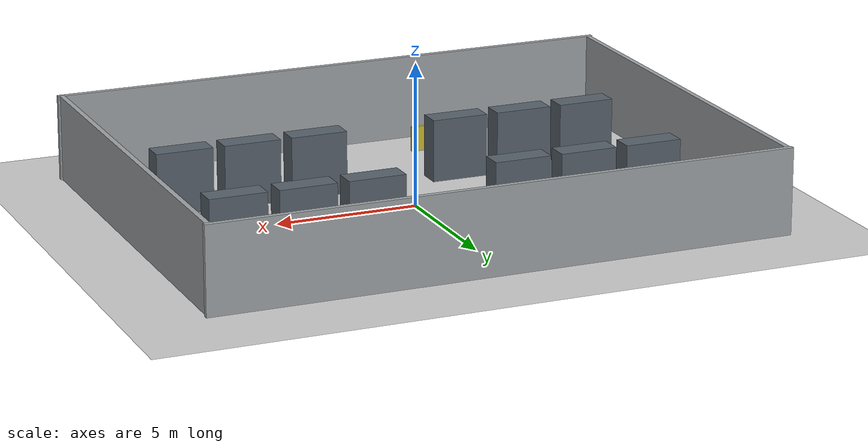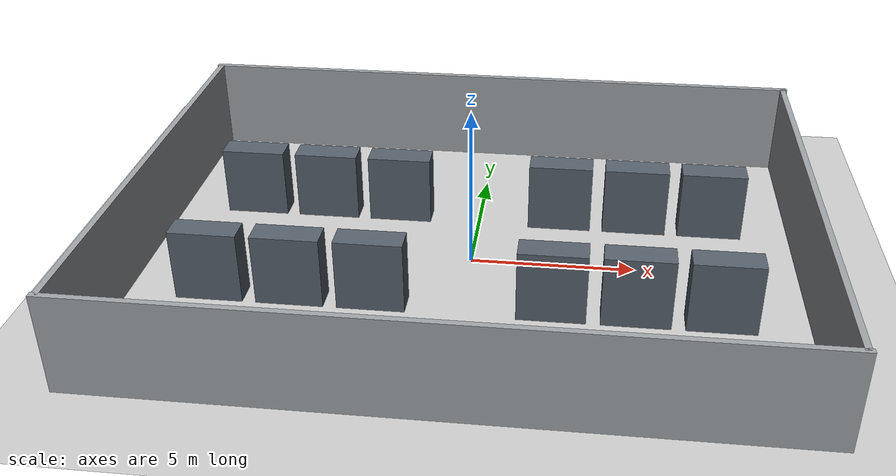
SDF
<sdf version="1.8">
 <world name="industrial_dynamic">
  <model name="ground_plane">
   <static>true</static>
   <link name="link">
    <collision name="collision">
     <geometry><plane><normal>0 0 1</normal><size>100 100</size></plane></geometry>
     <surface><friction><ode><mu>1.2</mu><mu2>1.2</mu2></ode></friction></surface>
    </collision>
    <visual name="visual">
     <geometry><plane><normal>0 0 1</normal><size>100 100</size></plane></geometry>
     <material>
      <ambient>0.8 0.8 0.8 1</ambient>
      <diffuse>0.8 0.8 0.8 1</diffuse>
      <specular>0.8 0.8 0.8 1</specular>
     </material>
    </visual>
   </link>
  </model>
  <plugin filename="ignition-gazebo-physics-system" name="ignition::gazebo::systems::Physics"/>
  <plugin filename="ignition-gazebo-sensors-system" name="ignition::gazebo::systems::Sensors">
   <render_engine>ogre2</render_engine>
  </plugin>
  <plugin filename="ignition-gazebo-imu-system" name="ignition::gazebo::systems::Imu"/>
  <plugin filename="ignition-gazebo-contact-system" name="ignition::gazebo::systems::Contact"/>
  <plugin filename="ignition-gazebo-user-commands-system" name="ignition::gazebo::systems::UserCommands"/>
  <plugin filename="ignition-gazebo-scene-broadcaster-system" name="ignition::gazebo::systems::SceneBroadcaster"/>
  <physics name="default" default="0" type="ode">
   <max_step_size>0.001</max_step_size>
   <real_time_factor>1</real_time_factor>
   <real_time_update_rate>1000</real_time_update_rate>
  </physics>
  <scene>
   <ambient>0.42 0.43 0.45 1</ambient>
   <background>0.70 0.74 0.78 1</background>
   <shadows>true</shadows>
  </scene>
  <light name="sun" type="directional">
   <pose>0 0 10 0 0 0</pose>
   <diffuse>0.85 0.84 0.78 1</diffuse>
   <specular>0.15 0.15 0.12 1</specular>
   <direction>-0.45 0.20 -0.87</direction>
  </light>
  <light name="overhead_west_aisle" type="point">
   <pose>-4.5 0 5.2 0 0 0</pose>
   <diffuse>0.88 0.90 0.96 1</diffuse>
   <specular>0.08 0.08 0.08 1</specular>
   <attenuation>
    <range>18</range>
    <constant>0.55</constant>
    <linear>0.025</linear>
    <quadratic>0.001</quadratic>
   </attenuation>
   <cast_shadows>false</cast_shadows>
  </light>
  <light name="overhead_east_aisle" type="point">
   <pose>4.5 0 5.2 0 0 0</pose>
   <diffuse>0.88 0.90 0.96 1</diffuse>
   <specular>0.08 0.08 0.08 1</specular>
   <attenuation>
    <range>18</range>
    <constant>0.55</constant>
    <linear>0.025</linear>
    <quadratic>0.001</quadratic>
   </attenuation>
   <cast_shadows>false</cast_shadows>
  </light>
  <model name="wall_south">
   <static>true</static>
   <pose>0 -7.5 1.5 0 0 0</pose>
   <link name="link">
    <collision name="collision"><geometry><box><size>20.3 0.18 3.0</size></box></geometry></collision>
    <visual name="visual">
     <geometry><box><size>20.3 0.18 3.0</size></box></geometry>
     <material><ambient>0.62 0.64 0.65 1</ambient><diffuse>0.62 0.64 0.65 1</diffuse></material>
    </visual>
   </link>
  </model>
  <model name="wall_north">
   <static>true</static>
   <pose>0 7.5 1.5 0 0 0</pose>
   <link name="link">
    <collision name="collision"><geometry><box><size>20.3 0.18 3.0</size></box></geometry></collision>
    <visual name="visual">
     <geometry><box><size>20.3 0.18 3.0</size></box></geometry>
     <material><ambient>0.62 0.64 0.65 1</ambient><diffuse>0.62 0.64 0.65 1</diffuse></material>
    </visual>
   </link>
  </model>
  <model name="wall_west">
   <static>true</static>
   <pose>-10 0 1.5 0 0 0</pose>
   <link name="link">
    <collision name="collision"><geometry><box><size>0.18 15.0 3.0</size></box></geometry></collision>
    <visual name="visual">
     <geometry><box><size>0.18 15.0 3.0</size></box></geometry>
     <material><ambient>0.62 0.64 0.65 1</ambient><diffuse>0.62 0.64 0.65 1</diffuse></material>
    </visual>
   </link>
  </model>
  <model name="wall_east">
   <static>true</static>
   <pose>10 0 1.5 0 0 0</pose>
   <link name="link">
    <collision name="collision"><geometry><box><size>0.18 15.0 3.0</size></box></geometry></collision>
    <visual name="visual">
     <geometry><box><size>0.18 15.0 3.0</size></box></geometry>
     <material><ambient>0.62 0.64 0.65 1</ambient><diffuse>0.62 0.64 0.65 1</diffuse></material>
    </visual>
   </link>
  </model>
  <model name="shelf_south_west_1">
   <static>true</static>
   <pose>-7.4 -2.6 1.1 0 0 0</pose>
   <link name="link">
    <collision name="collision"><geometry><box><size>2.0 0.8 2.2</size></box></geometry></collision>
    <visual name="visual">
     <geometry><box><size>2.0 0.8 2.2</size></box></geometry>
     <material><ambient>0.32 0.36 0.40 1</ambient><diffuse>0.34 0.38 0.42 1</diffuse></material>
    </visual>
   </link>
  </model>
  <model name="shelf_south_west_2">
   <static>true</static>
   <pose>-5.0 -2.6 1.1 0 0 0</pose>
   <link name="link">
    <collision name="collision"><geometry><box><size>2.0 0.8 2.2</size></box></geometry></collision>
    <visual name="visual">
     <geometry><box><size>2.0 0.8 2.2</size></box></geometry>
     <material><ambient>0.32 0.36 0.40 1</ambient><diffuse>0.34 0.38 0.42 1</diffuse></material>
    </visual>
   </link>
  </model>
  <model name="shelf_south_west_3">
   <static>true</static>
   <pose>-2.6 -2.6 1.1 0 0 0</pose>
   <link name="link">
    <collision name="collision"><geometry><box><size>2.0 0.8 2.2</size></box></geometry></collision>
    <visual name="visual">
     <geometry><box><size>2.0 0.8 2.2</size></box></geometry>
     <material><ambient>0.32 0.36 0.40 1</ambient><diffuse>0.34 0.38 0.42 1</diffuse></material>
    </visual>
   </link>
  </model>
  <model name="shelf_south_east_1">
   <static>true</static>
   <pose>2.6 -2.6 1.1 0 0 0</pose>
   <link name="link">
    <collision name="collision"><geometry><box><size>2.0 0.8 2.2</size></box></geometry></collision>
    <visual name="visual">
     <geometry><box><size>2.0 0.8 2.2</size></box></geometry>
     <material><ambient>0.32 0.36 0.40 1</ambient><diffuse>0.34 0.38 0.42 1</diffuse></material>
    </visual>
   </link>
  </model>
  <model name="shelf_south_east_2">
   <static>true</static>
   <pose>5.0 -2.6 1.1 0 0 0</pose>
   <link name="link">
    <collision name="collision"><geometry><box><size>2.0 0.8 2.2</size></box></geometry></collision>
    <visual name="visual">
     <geometry><box><size>2.0 0.8 2.2</size></box></geometry>
     <material><ambient>0.32 0.36 0.40 1</ambient><diffuse>0.34 0.38 0.42 1</diffuse></material>
    </visual>
   </link>
  </model>
  <model name="shelf_south_east_3">
   <static>true</static>
   <pose>7.4 -2.6 1.1 0 0 0</pose>
   <link name="link">
    <collision name="collision"><geometry><box><size>2.0 0.8 2.2</size></box></geometry></collision>
    <visual name="visual">
     <geometry><box><size>2.0 0.8 2.2</size></box></geometry>
     <material><ambient>0.32 0.36 0.40 1</ambient><diffuse>0.34 0.38 0.42 1</diffuse></material>
    </visual>
   </link>
  </model>
  <model name="shelf_north_west_1">
   <static>true</static>
   <pose>-7.4 2.6 1.1 0 0 0</pose>
   <link name="link">
    <collision name="collision"><geometry><box><size>2.0 0.8 2.2</size></box></geometry></collision>
    <visual name="visual">
     <geometry><box><size>2.0 0.8 2.2</size></box></geometry>
     <material><ambient>0.32 0.36 0.40 1</ambient><diffuse>0.34 0.38 0.42 1</diffuse></material>
    </visual>
   </link>
  </model>
  <model name="shelf_north_west_2">
   <static>true</static>
   <pose>-5.0 2.6 1.1 0 0 0</pose>
   <link name="link">
    <collision name="collision"><geometry><box><size>2.0 0.8 2.2</size></box></geometry></collision>
    <visual name="visual">
     <geometry><box><size>2.0 0.8 2.2</size></box></geometry>
     <material><ambient>0.32 0.36 0.40 1</ambient><diffuse>0.34 0.38 0.42 1</diffuse></material>
    </visual>
   </link>
  </model>
  <model name="shelf_north_west_3">
   <static>true</static>
   <pose>-2.6 2.6 1.1 0 0 0</pose>
   <link name="link">
    <collision name="collision"><geometry><box><size>2.0 0.8 2.2</size></box></geometry></collision>
    <visual name="visual">
     <geometry><box><size>2.0 0.8 2.2</size></box></geometry>
     <material><ambient>0.32 0.36 0.40 1</ambient><diffuse>0.34 0.38 0.42 1</diffuse></material>
    </visual>
   </link>
  </model>
  <model name="shelf_north_east_1">
   <static>true</static>
   <pose>2.6 2.6 1.1 0 0 0</pose>
   <link name="link">
    <collision name="collision"><geometry><box><size>2.0 0.8 2.2</size></box></geometry></collision>
    <visual name="visual">
     <geometry><box><size>2.0 0.8 2.2</size></box></geometry>
     <material><ambient>0.32 0.36 0.40 1</ambient><diffuse>0.34 0.38 0.42 1</diffuse></material>
    </visual>
   </link>
  </model>
  <model name="shelf_north_east_2">
   <static>true</static>
   <pose>5.0 2.6 1.1 0 0 0</pose>
   <link name="link">
    <collision name="collision"><geometry><box><size>2.0 0.8 2.2</size></box></geometry></collision>
    <visual name="visual">
     <geometry><box><size>2.0 0.8 2.2</size></box></geometry>
     <material><ambient>0.32 0.36 0.40 1</ambient><diffuse>0.34 0.38 0.42 1</diffuse></material>
    </visual>
   </link>
  </model>
  <model name="shelf_north_east_3">
   <static>true</static>
   <pose>7.4 2.6 1.1 0 0 0</pose>
   <link name="link">
    <collision name="collision"><geometry><box><size>2.0 0.8 2.2</size></box></geometry></collision>
    <visual name="visual">
     <geometry><box><size>2.0 0.8 2.2</size></box></geometry>
     <material><ambient>0.32 0.36 0.40 1</ambient><diffuse>0.34 0.38 0.42 1</diffuse></material>
    </visual>
   </link>
  </model>
  <model name="pallet_stack_nw">
   <static>true</static>
   <pose>-8.2 5.3 0.35 0 0 0</pose>
   <link name="link">
    <collision name="collision"><geometry><box><size>1.2 0.9 0.7</size></box></geometry></collision>
    <visual name="visual">
     <geometry><box><size>1.2 0.9 0.7</size></box></geometry>
     <material><ambient>0.48 0.30 0.14 1</ambient><diffuse>0.52 0.34 0.16 1</diffuse></material>
    </visual>
   </link>
  </model>
  <model name="pallet_stack_ne">
   <static>true</static>
   <pose>8.1 5.3 0.35 0 0 0</pose>
   <link name="link">
    <collision name="collision"><geometry><box><size>1.2 0.9 0.7</size></box></geometry></collision>
    <visual name="visual">
     <geometry><box><size>1.2 0.9 0.7</size></box></geometry>
     <material><ambient>0.48 0.30 0.14 1</ambient><diffuse>0.52 0.34 0.16 1</diffuse></material>
    </visual>
   </link>
  </model>
  <model name="charging_barrier">
   <static>true</static>
   <pose>-3.2 -5.8 0.45 0 0 0</pose>
   <link name="link">
    <collision name="collision"><geometry><box><size>1.8 0.12 0.9</size></box></geometry></collision>
    <visual name="visual">
     <geometry><box><size>1.8 0.12 0.9</size></box></geometry>
     <material><ambient>0.78 0.70 0.16 1</ambient><diffuse>0.80 0.72 0.18 1</diffuse></material>
    </visual>
   </link>
  </model>
 </world>
</sdf>
